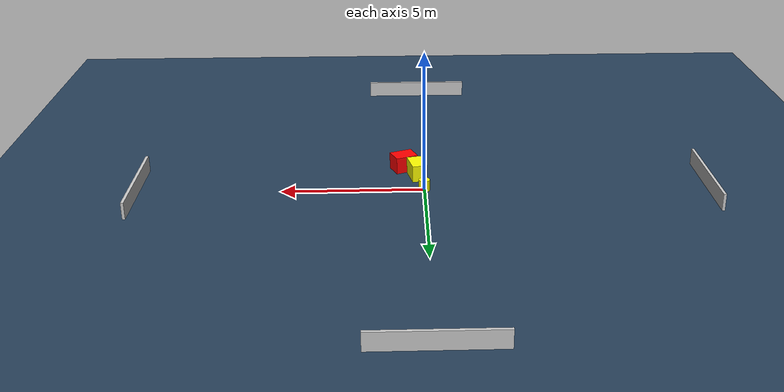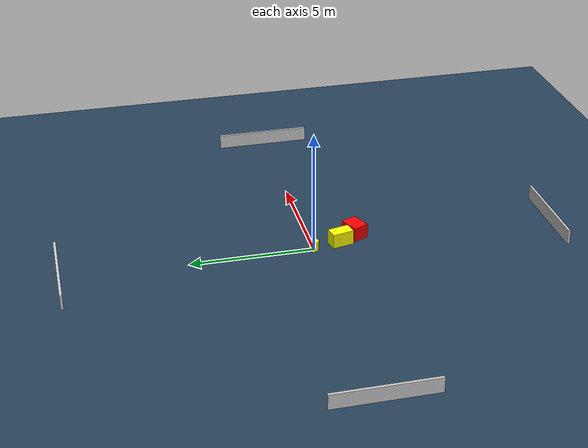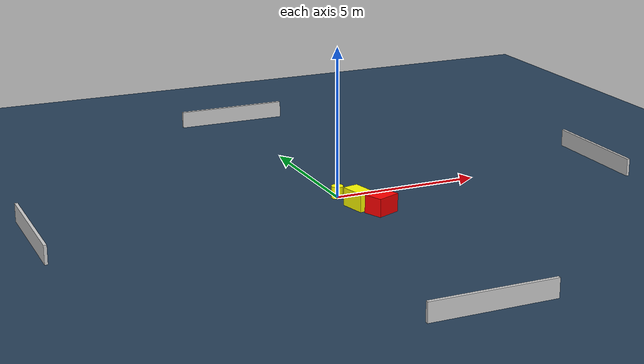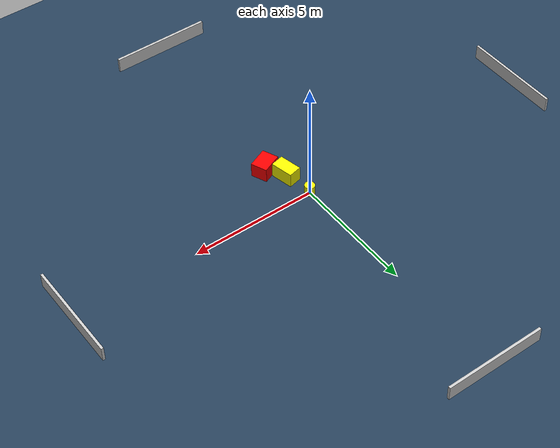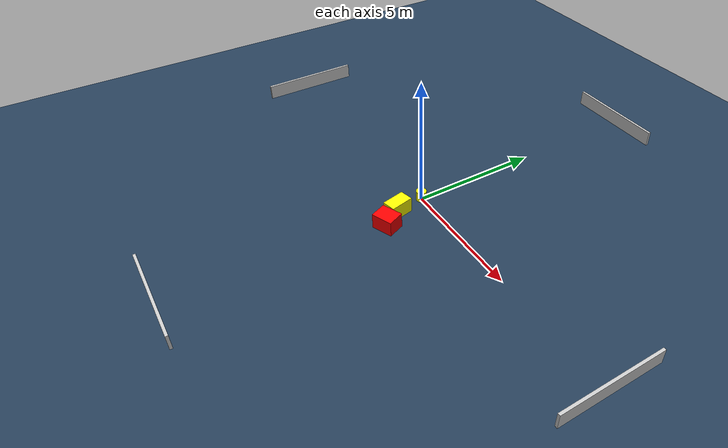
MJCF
<?xml version="1.0" ?>
<mujoco model="generated_environment">
  <option timestep="0.01" integrator="RK4" cone="elliptic"/>
  <default>
    <geom density="1"/>
  </default>
  <asset>
    <texture builtin="gradient" height="3072" name="skybox" rgb1="0.3 0.5 0.7" rgb2="0 0 0" type="skybox" width="512"/>
    <texture builtin="checker" height="300" name="groundplane" rgb1="0.2 0.3 0.4" rgb2="0.1 0.2 0.3" type="2d" width="300"/>
    <material name="groundplane" reflectance="0.2" texrepeat="5 5" texture="groundplane"/>
  </asset>
  <worldbody>
    <light dir="0 0 -1" directional="true" pos="0 0 1.5"/>
    <geom condim="3" friction="0.5 0.005 0.001" material="groundplane" name="floor" pos="0 0 0" size="0 0 0.05" type="plane"/>
    <body name="walls">
      <geom name="wall_1" condim="4" pos="-10.0 0.0 0.3" rgba="0.800000011920929 0.800000011920929 0.800000011920929 1.0" size="0.05 2.0 0.3" type="box"/>
      <geom name="wall_2" condim="4" pos="10.0 0.0 0.3" rgba="0.800000011920929 0.800000011920929 0.800000011920929 1.0" size="0.05 2.0 0.3" type="box"/>
      <geom name="wall_3" condim="4" pos="0.0 -10.0 0.3" rgba="0.800000011920929 0.800000011920929 0.800000011920929 1.0" size="2.0 0.05 0.3" type="box"/>
      <geom name="wall_4" condim="4" pos="0.0 10.0 0.3" rgba="0.800000011920929 0.800000011920929 0.800000011920929 1.0" size="2.0 0.05 0.3" type="box"/>
    </body>
    <body name="robot">
      <joint name="joint_x" type="slide" pos="0 0 0" axis="1 0 0"/>
      <joint name="joint_y" type="slide" pos="0 0 0" axis="0 1 0"/>
      <geom name="robot" type="cylinder" pos="0.0 0.0 0.2" size="0.2 0.2 0.0" mass="5.0" friction="1.0 0.005 0.0001" condim="4" rgba="1.0 1.0 0.0 1.0"/>
    </body>
    <body name="obstacle_1_movable">
      <geom name="obstacle_1_movable" condim="4" pos="0.22253191213456733 -1.1589577546411176 0.3" euler="0 0 282.4826960691627" friction="0.0 0.005 0.001" rgba="1.0 1.0 0.0 1.0" size="0.45080581368783157 0.26404716159050656 0.3" type="box" mass="0.1"/>
      <joint type="free"/>
    </body>
    <body name="obstacle_2_static">
      <geom name="obstacle_2_static" condim="4" pos="0.6834762754433746 -1.8686931012163608 0.3" euler="0 0 112.62229615994997" friction="0.0 0.005 0.001" rgba="1.0 0.0 0.0 1.0" size="0.3275696362147667 0.4152939866365898 0.3" type="box"/>
    </body>
  </worldbody>
  <actuator>
    <motor name="actuator_x" joint="joint_x" gear="1" ctrlrange="-1 1"/>
    <motor name="actuator_y" joint="joint_y" gear="1" ctrlrange="-1 1"/>
  </actuator>
</mujoco>
